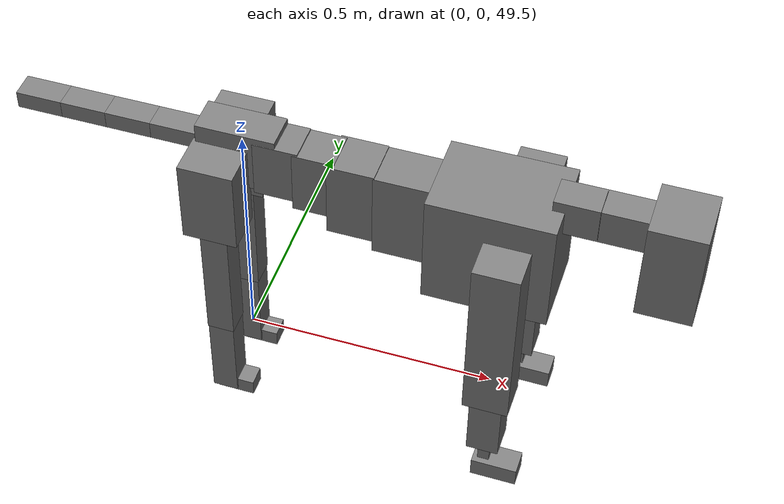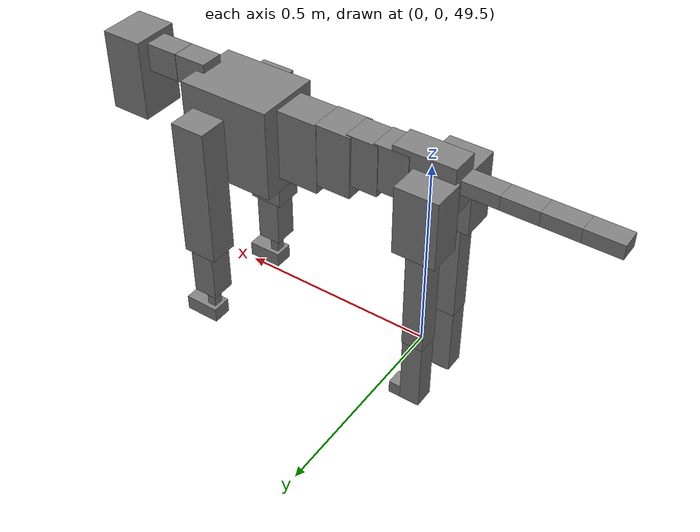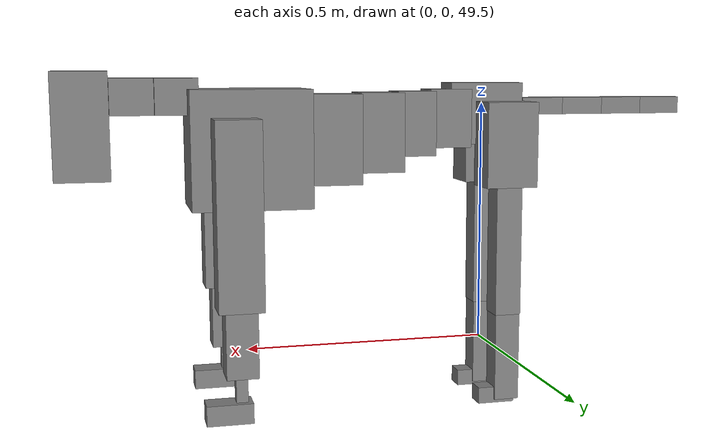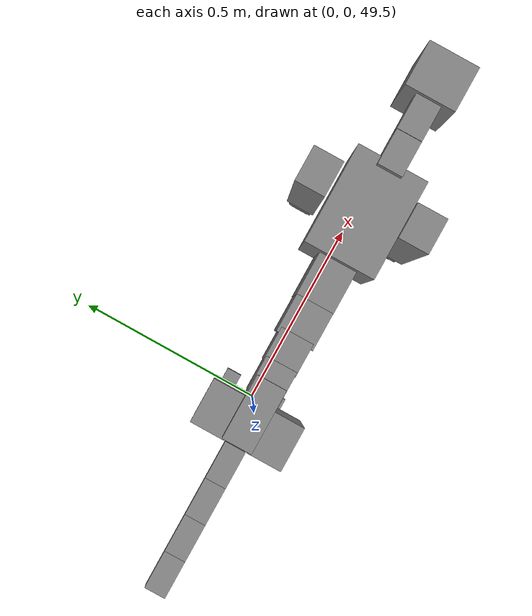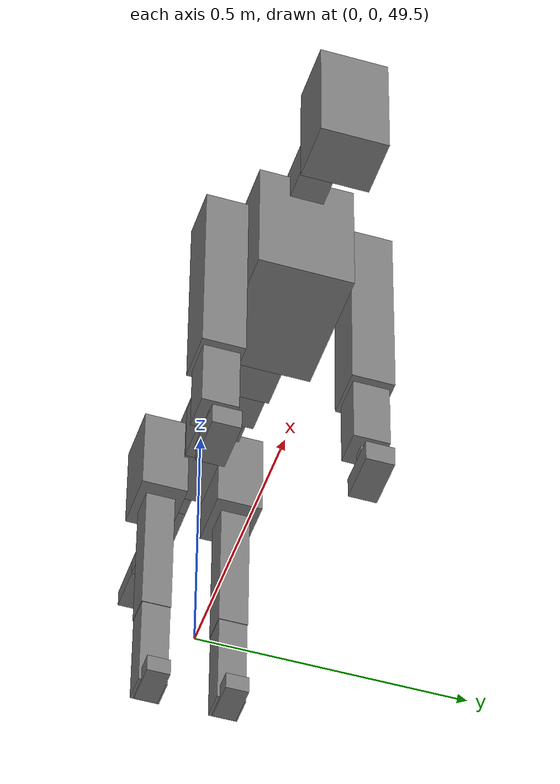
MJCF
<mujoco model="dog">

    <default>
        <joint armature="0.02" stiffness="1" damping="0.2" limited="true"/>
        <geom condim="3" friction="1 0.05 0.05" margin="0.01"/>
        <motor ctrllimited="true" ctrlrange="-1.0 1.0" forcelimited="true" gear="50"/>
    </default>

    <compiler inertiafromgeom="true" angle="radian"/>

    <option timestep="0.016" iterations="50" tolerance="1e-10" solver="Newton" jacobian="dense" cone="pyramidal"/>

    <size nconmax="20000" njmax="60000" nstack="5000000"/>
    <visual>
        <map force="0.1" zfar="30"/>
        <rgba haze="0.15 0.25 0.35 1"/>
        <quality shadowsize="2048"/>
        <global offwidth="800" offheight="800"/>
    </visual>

    <asset>
        <texture type="skybox" builtin="gradient" rgb1="0.3 0.5 0.7" rgb2="0 0 0" width="512" height="512"/>
        <texture name="texplane" type="2d" builtin="checker" rgb1=".2 .3 .4" rgb2=".1 0.15 0.2" width="512" height="512"
                 mark="cross" markrgb=".8 .8 .8"/>
        <texture name="texgeom" type="cube" builtin="flat" mark="cross" width="127" height="1278" rgb1="0.8 0.6 0.4"
                 rgb2="0.8 0.6 0.4" markrgb="1 1 1" random="0.01"/>

        <material name="matplane" reflectance="0.3" texture="texplane" texrepeat="1 1" texuniform="true"/>
        <material name="matgeom" texture="texgeom" texuniform="true" rgba="0.8 0.6 .4 1"/>
    </asset>

    <worldbody>
        <geom name="floor" pos="0 0 0" size="0 0 .25" type="plane" material="matplane" condim="3"/>

        <light directional="false" diffuse=".2 .2 .2" specular="0 0 0" pos="0 0 5" dir="0 0 -1" castshadow="false"/>
        <light mode="targetbodycom" target="torso" directional="false" diffuse=".8 .8 .8" specular="0.3 0.3 0.3"
               pos="0 0 4.0" dir="0 0 -1"/>

        <body name="root" pos="0 0 50">
            <freejoint name="root_1"/>
            <geom type="box" pos="0 0 -0.02" size="0.0774  0.0358  0.063" density="2030"/>

            <body name="spine1" pos="0.054 0 0">
                <joint name="spine1_y" axis="0 1 0" range="0 0.7" limited="true"/>
                <geom type="box" pos="0.02375 0 -0.03" size="0.04375  0.0375  0.05985" density="2030"/>

                <body name="spine2" pos="0.0612 0 0">
                    <joint name="spine2_y" axis="0 1 0" range="-0.15 0.15" limited="true"/>
                    <geom type="box" pos="0.03555  0  -0.04" size="0.04055  0.039  0.06615" density="2030"/>

                    <body name="spine3" pos="0.0730 0 0">
                        <joint name="spine3_y" axis="0 1 0" range="-0.15 0.15" limited="true"/>
                        <geom type="box" pos="0.03555  0  -0.057" size="0.04555  0.0445  0.081" density="2030"/>

                        <body name="spine4" pos="0.0780 0 0">
                            <joint name="spine4_y" axis="0 1 0" range="-0.15 0.15" limited="true"/>
                            <geom type="box" pos="0.05265  0  -0.07" size="0.05265  0.045  0.09135" density="2030"/>

                            <body name="torso" pos="0.1082 0 0">
                                <joint name="torso_y" axis="0 1 0" range="-0.15 0.15" limited="true"/>
                                <geom type="box" pos="0.11925  0  -0.085" size="0.11925  0.085  0.11745"
                                      density="2030"/>

                                <body name="neck1" pos="0.2160  0   0.0180">
                                    <joint name="neck1_y" axis="0 1 0" range="-1.2  -1" limited="true"/>
                                    <geom type="box" pos="0.0423  0  0" size="0.0423  0.03  0.036" density="2325"/>

                                    <body name="neck2" pos="0.0853  0  0">
                                        <joint name="neck2_y" axis="0 1 0" range="0.1  0" limited="true"/>
                                        <geom type="box" pos="0.0423  0  0" size="0.0423  0.03  0.036" density="2325"/>

                                        <body name="head" pos="0.0853  0  0">
                                            <joint name="head_y" axis="0 1 0" range="-0.3  -0.2" limited="true"/>
                                            <geom type="box" pos="0.0531  0  -0.055" size="0.0531  0.06  0.1044"
                                                  density="4030"/>

                                        </body>
                                    </body>
                                </body>

                                <body name="front_shoulder" pos="0.156  0   -0.0480">
                                    <joint name="front_shoulder_y" axis="0 1 0" range="-1 1.5" limited="true"/>
                                    <geom type="box" pos="0 0.13 -0.1563" size="0.0443  0.0378  0.1829" density="1158"/>
                                    <geom type="box" pos="0 -0.13 -0.1563" size="0.0443  0.0378  0.1829"
                                          density="1158"/>

                                    <body name="front_elbow" pos="0  0  -0.3126">
                                        <joint name="front_elbow_y" axis="0 1 0" range="-2 0" limited="true"/>
                                        <geom type="box" pos="0 0.13 -0.0780" size="0.0313  0.0320  0.0780"
                                              density="1081"/>
                                        <geom type="box" pos="0 -0.13 -0.0780" size="0.0313  0.0320  0.0780"
                                              density="1081"/>

                                        <body name="front_wrist" pos="0  0  -0.1560">
                                            <joint name="front_wrist_y" axis="0 1 0" range="-0.2 0" limited="true"/>
                                            <geom type="box" pos="0 0.13 -0.0328" size="0.0115  0.0128  0.0460"
                                                  density="1664"/>
                                            <geom type="box" pos="0 -0.13 -0.0328" size="0.0115  0.0128  0.0460"
                                                  density="1664"/>

                                            <body name="front_finger_end" pos="0  0  -0.0657">
                                                <joint name="front_finger_y" axis="0 1 0" range="-0.4 1"
                                                       limited="true"/>
                                                <geom type="box" pos="0.0248  0.13  -0.0050"
                                                      size="0.0454  0.0248  0.0200" density="1515"/>
                                                <geom type="box" pos="0.0248  -0.13  -0.0050"
                                                      size="0.0454  0.0248  0.0200" density="1515"/>

                                            </body>

                                        </body>
                                    </body>
                                </body>

                            </body>
                        </body>
                    </body>
                </body>
            </body>

            <body name="back_hip" pos="-0.03 0 -0.018">
                <joint name="back_hip_y" axis="0 1 0" range="-1.5 0.3" limited="true"/>
                <geom type="box" pos="0 0.07 -0.0640" size="0.0536  0.0420  0.0868" density="1154"/>
                <geom type="box" pos="0 -0.07 -0.0640" size="0.0536  0.0420  0.0868" density="1154"/>

                <body name="back_knee" pos="0  0  -0.1280">
                    <joint name="back_knee_y" axis="0 1 0" range="0 2.8" limited="true"/>
                    <geom type="box" pos="0 0.07 -0.1369" size="0.0271  0.0267  0.1525" density="1227"/>
                    <geom type="box" pos="0 -0.07 -0.1369" size="0.0271  0.0267  0.1525" density="1227"/>

                    <body name="back_ankle" pos="0  0  -0.2739">
                        <joint name="back_ankle_y" axis="0 1 0" range="-2.2 0" limited="true"/>
                        <geom type="box" pos="0 0.07 -0.0928" size="0.0258  0.0258  0.1040" density="1284"/>
                        <geom type="box" pos="0 -0.07 -0.0928" size="0.0258  0.0258  0.1040" density="1284"/>

                        <body name="back_toe_end" pos="0  0  -0.1855">
                            <joint name="back_toe_y" axis="0 1 0" range="-0.4 1" limited="true"/>
                            <geom type="box" pos="0.0209  0.07  -0.0018" size="0.0383  0.0209  0.0168" density="1515"/>
                            <geom type="box" pos="0.0209  -0.07  -0.0018" size="0.0383  0.0209  0.0168" density="1515"/>

                        </body>
                    </body>
                </body>
            </body>

            <body name="tail1" pos="-0.074 0 -0.006">
                <joint name="tail1_y" axis="0 1 0" range="-0.2 0.2" limited="true"/>
                <geom type="box" pos="-0.0536  0  0" size="0.045  0.025  0.0175" density="1587"/>

                <body name="tail2" pos="-0.09 0 0">
                    <joint name="tail2_y" axis="0 1 0" range="-0.2 0.2" limited="true"/>
                    <geom type="box" pos="-0.0536  0  0" size="0.045  0.025  0.0175" density="1587"/>

                    <body name="tail3" pos="-0.09 0 0">
                        <joint name="tail3_y" axis="0 1 0" range="-0.2 0.2" limited="true"/>
                        <geom type="box" pos="-0.0536  0  0" size="0.045  0.025  0.0175" density="1587"/>

                        <body name="tail4" pos="-0.09 0 0">
                            <joint name="tail4_y" axis="0 1 0" range="-0.2 0.2" limited="true"/>
                            <geom type="box" pos="-0.0536  0  0" size="0.045  0.025  0.0175" density="1587"/>

                        </body>
                    </body>
                </body>
            </body>
        </body>
    </worldbody>

    <actuator>
        <motor joint="spine1_y" forcerange="-150 150     "/>
        <motor joint="spine2_y" forcerange="-150 150     "/>
        <motor joint="spine3_y" forcerange="-150 150     "/>
        <motor joint="spine4_y" forcerange="-150 150     "/>
        <motor joint="torso_y" forcerange="-150 150     "/>
        <motor joint="neck1_y" forcerange="-100 100       "/>
        <motor joint="neck2_y" forcerange="-100 100       "/>
        <motor joint="head_y" forcerange="-150 150       "/>
        <motor joint="front_shoulder_y" forcerange="-171.48 180.68"/>
        <motor joint="front_elbow_y" forcerange="-136.50 196.16"/>
        <motor joint="front_wrist_y" forcerange="-50.15 52.41"/>
        <motor joint="front_finger_y" forcerange="-45.93 46.16"/>
        <motor joint="back_hip_y" forcerange="-380.99 379.28"/>
        <motor joint="back_knee_y" forcerange="-265.76 322.30"/>
        <motor joint="back_angle_y" forcerange="-99.83 213.63"/>
        <motor joint="back_toe_y" forcerange="-54.35 32.56"/>
        <motor joint="tail1_y" forcerange="-50 50     "/>
        <motor joint="tail2_y" forcerange="-50 50     "/>
        <motor joint="tail3_y" forcerange="-50 50     "/>
        <motor joint="tail4_y" forcerange="-50 50     "/>
    </actuator>
</mujoco>
